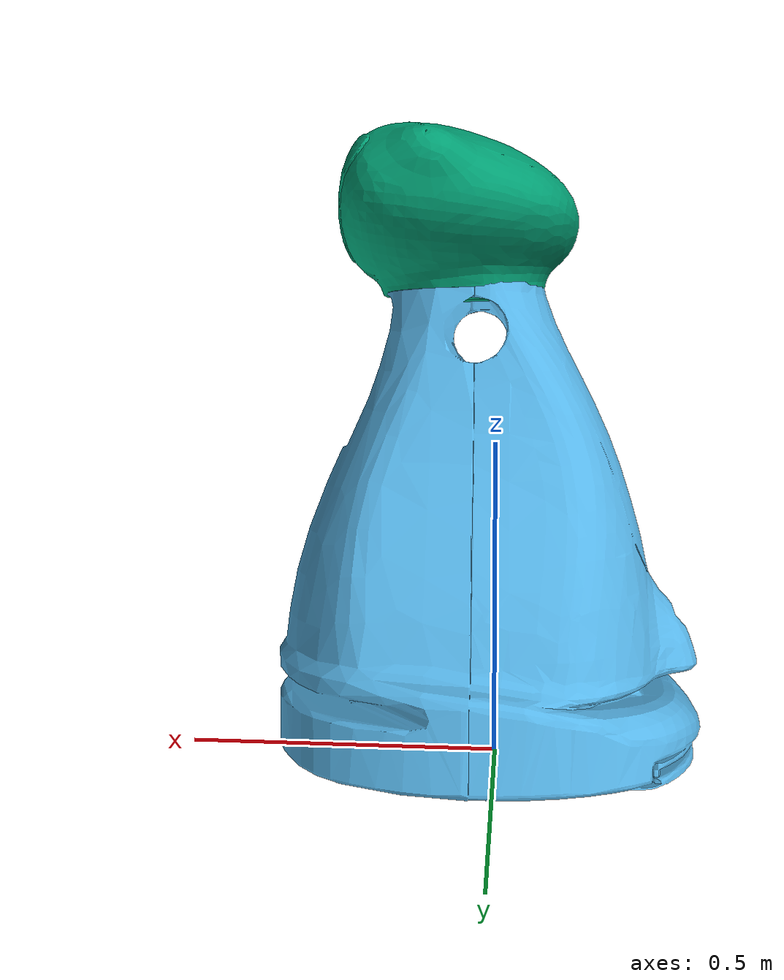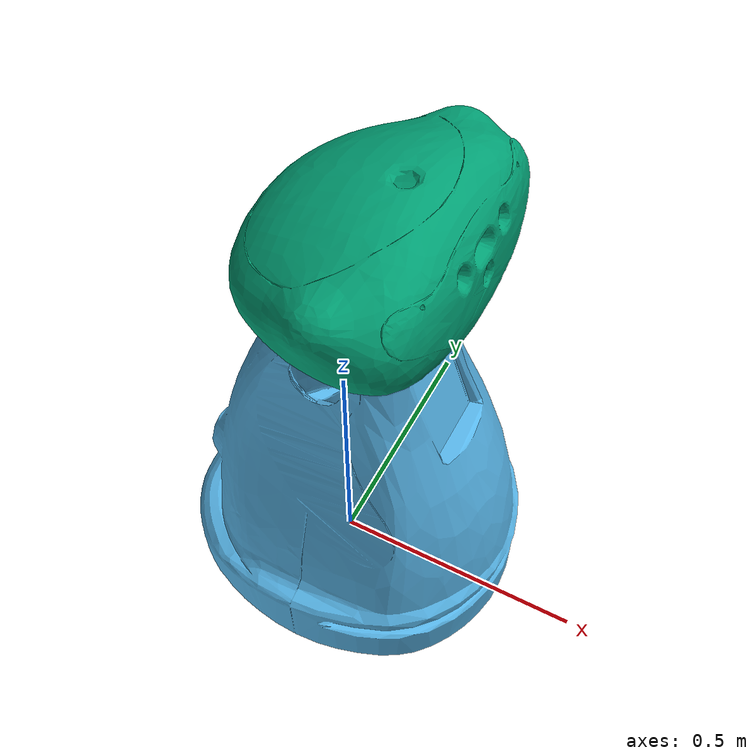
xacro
<?xml version="1.0"?>
<robot xmlns:xacro="http://www.ros.org/wiki/xacro" name="mbot">

  <xacro:property name="pi_2" value="1.57079632679" />

  <link name="mbot_base_link"/>

  <link name="mbot_body_link">
   <visual>
      <geometry>
        <mesh filename="package://mbot_simulator/meshes/mbot_body.dae"/>
      </geometry>
      <origin rpy="${pi_2} 0 ${pi_2}" xyz="0 0 0.025"/>
    </visual>
    <collision>
      <geometry>
        <mesh filename="package://mbot_simulator/meshes/mbot_body.dae"/>
      </geometry>
      <origin rpy="${pi_2} 0 ${pi_2}" xyz="0 0 0.025"/>
    </collision>
    <inertial>
      <mass value="50.0" />
      <origin xyz="0.0 0.0 0.0"/>
      <inertia ixx="1.0" ixy="0.0" ixz="0.0"
	       iyy="1.0" iyz="0.0"
	       izz="1.0" />
    </inertial>
  </link>

  <link name="mbot_head_link">
   <visual>
      <geometry>
        <mesh filename="package://mbot_simulator/meshes/mbot_head.dae"/>
      </geometry>
      <origin rpy="${pi_2} 0 ${pi_2}" xyz="-0.05 0 0"/>
    </visual>
    <collision>
      <geometry>
        <mesh filename="package://mbot_simulator/meshes/mbot_head.dae"/>
      </geometry>
      <origin rpy="${pi_2} 0 ${pi_2}" xyz="-0.05 0 0"/>
    </collision>
    <inertial>
      <mass value="50.0" />
      <origin xyz="0.0 0.0 0.0"/>
      <inertia ixx="1.0" ixy="0.0" ixz="0.0"
	       iyy="1.0" iyz="0.0"
	       izz="1.0" />
    </inertial>
  </link>

  <joint name="mbot_main_joint" type="fixed">
    <parent link="mbot_base_link"/>
    <child link="mbot_body_link"/>
    <origin xyz="0 0 0" rpy="0 0 0"/>
  </joint>

  <joint name="mbot_head_joint" type="revolute">
    <parent link="mbot_body_link"/>
    <child link="mbot_head_link"/>
    <limit lower="${-pi_2}" upper="${pi_2}" effort="100.0" velocity="1.0" />
    <axis xyz="0 0 1" />
    <origin xyz="0.05 0 0" rpy="0 0 0"/>
  </joint>

</robot>
